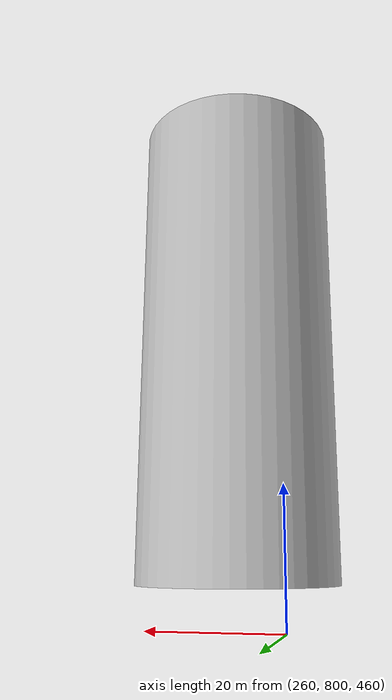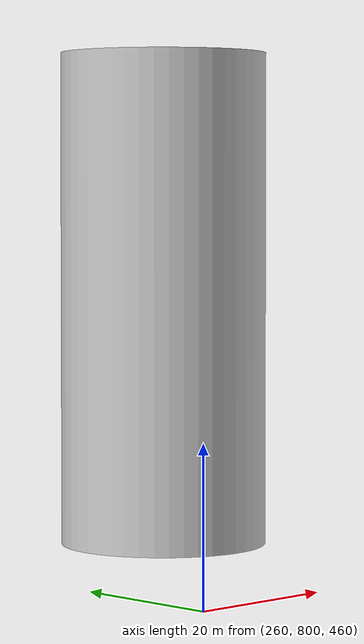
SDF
<?xml version='1.0'?>
<sdf version="1.4">
  <model name="vtulka1">
    <pose>0 0 0.5 0 0 0</pose>
    <static>true</static>
    <link name="link">
      <collision name="collision">
        <geometry>
          <mesh>
            <uri>model://vtulka1/meshes/vtulka1.stl</uri>
          <scale>1 1 1</scale>
          </mesh>
        </geometry>
      </collision>
      <visual name="visual">
        <geometry>
          <mesh>
            <uri>model://vtulka1/meshes/vtulka1.stl</uri>
          <scale>1 1 1</scale>
          </mesh>
        </geometry>
      </visual>
    </link>
  </model>
</sdf>
